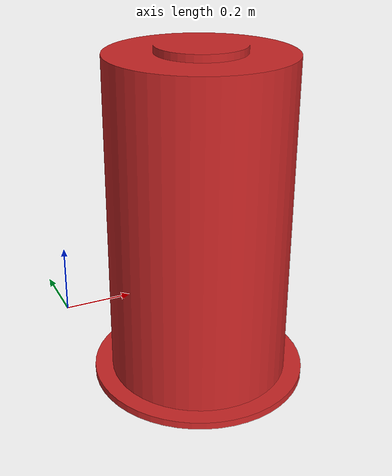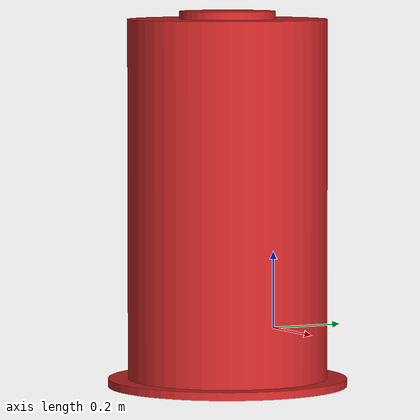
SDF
<?xml version="1.0" ?>
<sdf version="1.5">
  <model name="navigation_buoys0">
    <link name="link">
      <inertial>
        <!-- Mass determined based on buoyancy geometry so object
             floats at mid-point of sphere -->
        <mass>20</mass>
        <!-- Mark only - based on cylinder -->
        <inertia>
          <ixx>1.0</ixx>
          <ixy>0</ixy>
          <ixz>0</ixz>
          <iyy>1.0</iyy>
          <iyz>0</iyz>
          <izz>0.1</izz>
        </inertia>
      </inertial>
      <collision name="collision">
        <geometry>
          <box>
            <size>0.6 0.6 1</size>
            <scale>0.001 0.001 0.001</scale>
          </box>
        </geometry>
        <surface>
          <friction>
            <ode>
              <mu>100</mu>
              <mu2>50</mu2>
            </ode>
          </friction>
        </surface>
      </collision>
      <visual name="visual">
        <pose>0 0 -0.1 1.5708 0 0</pose>
        <geometry>
          <mesh>
            <uri>model://navigation_buoys0/meshes/Navigation Buoys.STL</uri>
            <scale>0.001 0.001 0.001</scale>
          </mesh>
        </geometry>
        <material>
          <script>
            <uri>file://media/materials/scripts/gazebo.material</uri>
            <name>Gazebo/Red</name>
          </script>
        </material>
      </visual>
    </link>
    <plugin name="BuoyancyPlugin" filename="libbuoyancy_gazebo_plugin.so">
      <wave_model>ocean_waves</wave_model>
      <fluid_density>1000</fluid_density>
      <fluid_level>0.0</fluid_level>
      <linear_drag>25.0</linear_drag>
      <angular_drag>2.0</angular_drag>
      <buoyancy name="buoyancy_sphere">
        <link_name>link</link_name>
        <pose>0 0 -0.02 0 0 0</pose>
        <geometry>
          <sphere>
            <radius>0.235</radius>
          </sphere>
        </geometry>
      </buoyancy>
    </plugin>
  </model>
</sdf>
